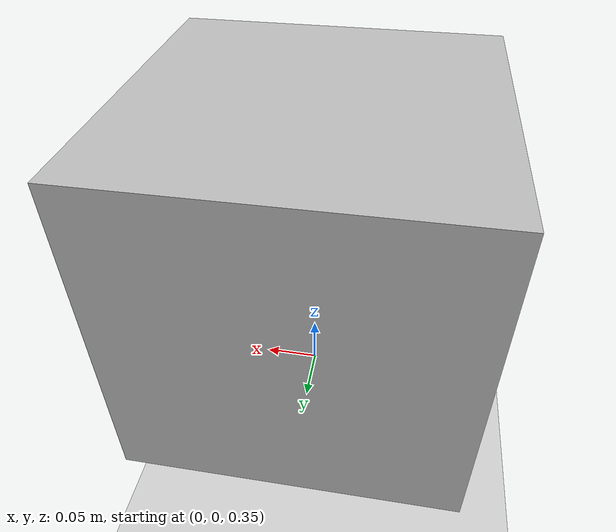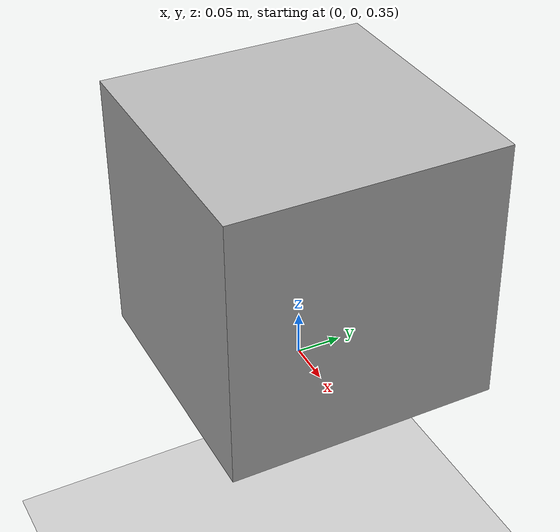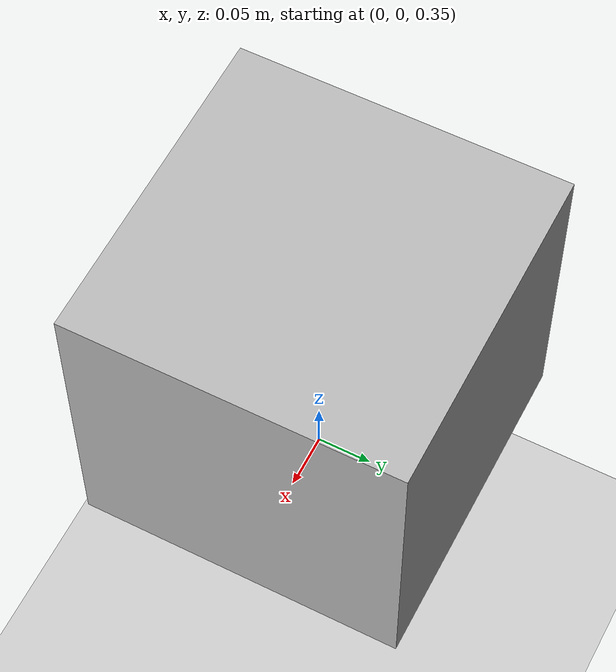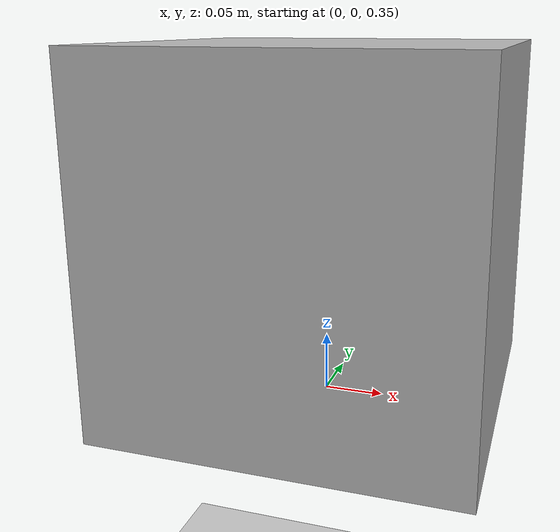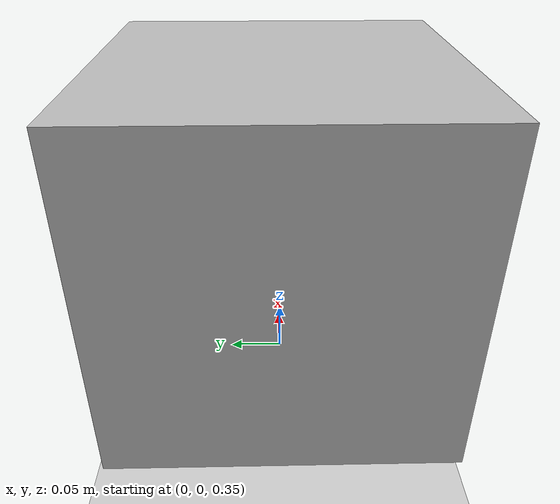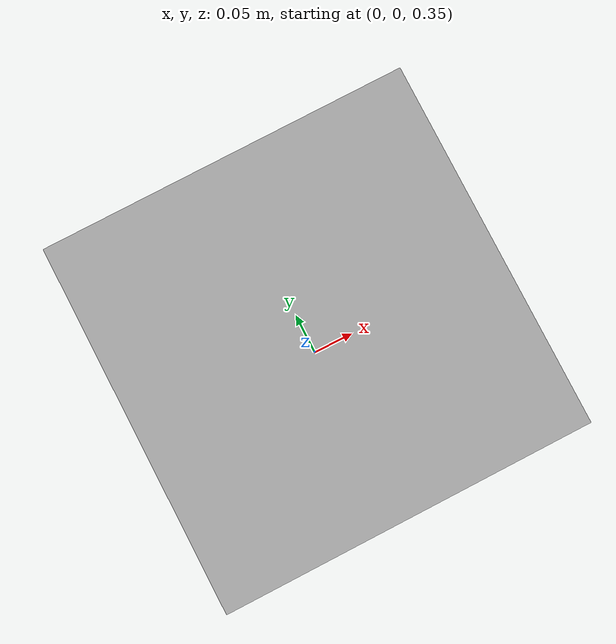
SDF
<?xml version="1.0" ?>
<sdf version="1.8">
  <world name="ecm_battery_demo">
    <physics name="1ms" type="ignored">
      <max_step_size>0.001</max_step_size>
      <real_time_factor>1.0</real_time_factor>
    </physics>
    <plugin filename="gz-sim-physics-system" name="gz::sim::systems::Physics"></plugin>
    <plugin filename="gz-sim-scene-broadcaster-system" name="gz::sim::systems::SceneBroadcaster"></plugin>
    <plugin filename="gz-sim-user-commands-system" name="gz::sim::systems::UserCommands"></plugin>

    <light type="directional" name="sun">
      <cast_shadows>true</cast_shadows>
      <pose>0 0 10 0 0 0</pose>
      <diffuse>0.8 0.8 0.8 1</diffuse>
      <direction>-0.5 0.1 -0.9</direction>
    </light>

    <model name="ground_plane">
      <static>true</static>
      <link name="link">
        <collision name="collision">
          <geometry><plane><normal>0 0 1</normal></plane></geometry>
        </collision>
        <visual name="visual">
          <geometry><plane><normal>0 0 1</normal><size>20 20</size></plane></geometry>
        </visual>
      </link>
    </model>

    <model name="battery_test_box">
      <pose>0 0 0.5 0 0 0</pose>
      <static>true</static>
      <link name="body">
        <visual name="visual">
          <geometry><box><size>0.3 0.3 0.3</size></box></geometry>
        </visual>
        <collision name="collision">
          <geometry><box><size>0.3 0.3 0.3</size></box></geometry>
        </collision>
      </link>

      <plugin filename="gz_ecm_battery_plugin" name="gz_ecm_battery_plugin::EscBatteryPlugin">
        <battery_name>lir18650_esc</battery_name>
        <capacity>2.5</capacity>
        <r0>0.050</r0>
        <r1>0.020</r1>
        <c1>4000</c1>
        <hysteresis_m>0.010</hysteresis_m>
        <hysteresis_m0>0.003</hysteresis_m0>
        <hysteresis_gamma>50.0</hysteresis_gamma>
        <coulombic_efficiency>0.998</coulombic_efficiency>
        <power_load>4.625</power_load> <!-- ~1.25A @ 3.7V nominal (0.5C sustained, HPPC profile) -->
        <start_draining>true</start_draining>
        <smooth_current_tau>0.1</smooth_current_tau>

        <!-- OCV(SOC) curve -- identical points to _NMC_SOC_POINTS/_NMC_OCV_POINTS
             in esc_battery_model.py (NMC/graphite 18650-type cell). -->
        <ocv_point soc="0.00" voltage="3.00"/>
        <ocv_point soc="0.05" voltage="3.30"/>
        <ocv_point soc="0.10" voltage="3.45"/>
        <ocv_point soc="0.20" voltage="3.55"/>
        <ocv_point soc="0.30" voltage="3.62"/>
        <ocv_point soc="0.40" voltage="3.68"/>
        <ocv_point soc="0.50" voltage="3.72"/>
        <ocv_point soc="0.60" voltage="3.78"/>
        <ocv_point soc="0.70" voltage="3.85"/>
        <ocv_point soc="0.80" voltage="3.95"/>
        <ocv_point soc="0.90" voltage="4.08"/>
        <ocv_point soc="0.95" voltage="4.14"/>
        <ocv_point soc="1.00" voltage="4.20"/>
      </plugin>
    </model>
  </world>
</sdf>
